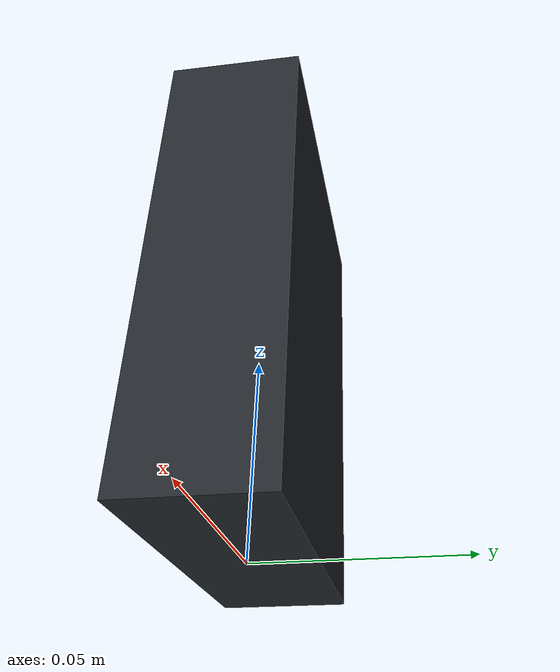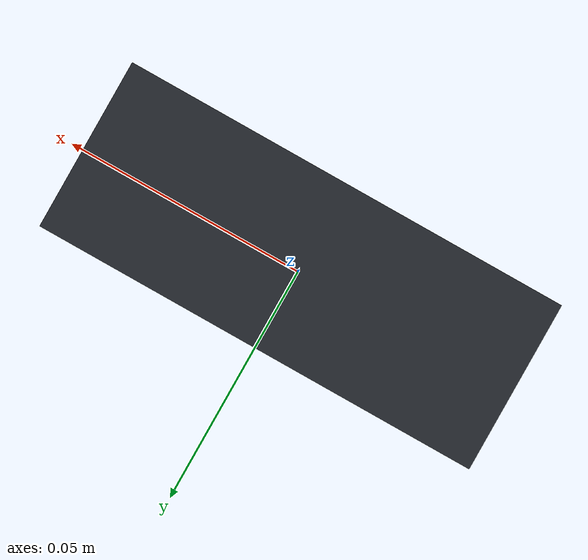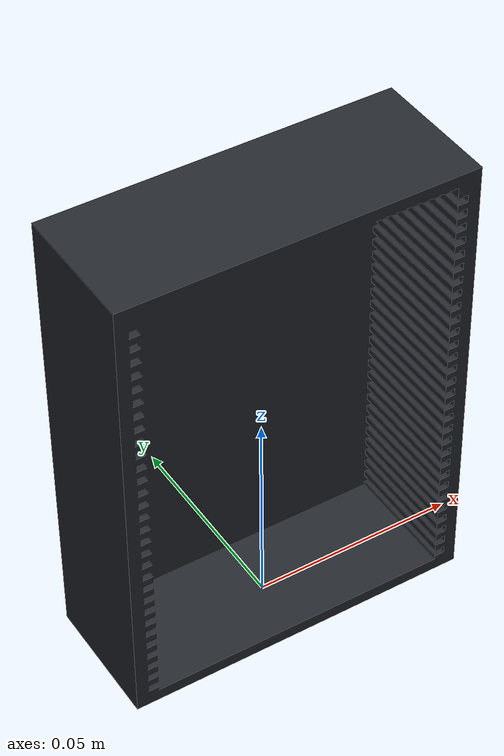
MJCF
<?xml version='1.0' encoding='utf-8'?>
<mujoco model="CV5030 output magazine | static asset inspection">
  <compiler angle="radian" />
  <visual>
    <global offwidth="1000" offheight="600" />
    <headlight ambient=".4 .4 .4" diffuse=".6 .6 .6" />
  </visual>
  <asset>
    <texture type="skybox" builtin="gradient" rgb1=".92 .95 .97" rgb2=".70 .78 .84" width="512" height="3072" />
    <mesh name="output_magazine_0" file="meshes/output_magazine_0.obj" inertia="shell" />
  </asset>
  <worldbody>
    <geom type="mesh" mesh="output_magazine_0" rgba="0.141176471 0.156862745 0.180392157 1" contype="0" conaffinity="0" density="0" />
  </worldbody>
</mujoco>
